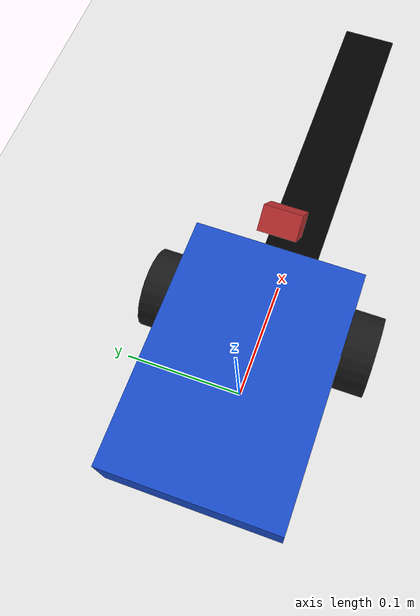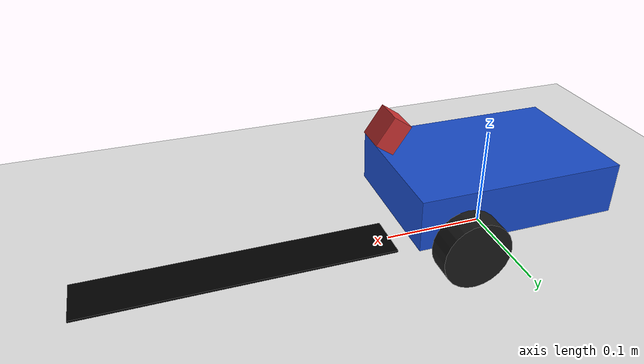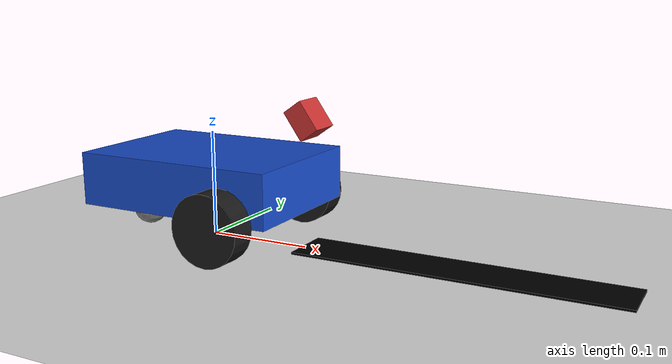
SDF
<?xml version="1.0"?>
<sdf version="1.8">
  <world name="empty_test">
    <physics name="1ms" type="ignored">
      <max_step_size>0.001</max_step_size>
      <real_time_factor>1.0</real_time_factor>
    </physics>
    <plugin filename="ignition-gazebo-physics-system"
            name="ignition::gazebo::systems::Physics"/>
    <plugin filename="ignition-gazebo-user-commands-system"
            name="ignition::gazebo::systems::UserCommands"/>
    <plugin filename="ignition-gazebo-scene-broadcaster-system"
            name="ignition::gazebo::systems::SceneBroadcaster"/>
    <plugin filename="ignition-gazebo-sensors-system"
            name="ignition::gazebo::systems::Sensors">
      <render_engine>ogre2</render_engine>
    </plugin>

    <light type="directional" name="sun">
      <cast_shadows>true</cast_shadows>
      <pose>0 0 10 0 0 0</pose>
      <diffuse>0.8 0.8 0.8 1</diffuse>
      <specular>0.2 0.2 0.2 1</specular>
      <direction>-0.5 0.1 -0.9</direction>
    </light>

    <model name="ground_plane">
      <static>true</static>
      <link name="link">
        <collision name="collision">
          <geometry>
            <plane><normal>0 0 1</normal><size>20 20</size></plane>
          </geometry>
        </collision>
        <visual name="visual">
          <geometry>
            <plane><normal>0 0 1</normal><size>20 20</size></plane>
          </geometry>
          <material>
            <ambient>0.9 0.9 0.9 1</ambient>
            <diffuse>0.9 0.9 0.9 1</diffuse>
          </material>
        </visual>
      </link>
    </model>

    <!-- Black strip on the floor in front of the robot so the camera
         done-check can prove it sees the ground ahead of the wheels. -->
    <model name="test_strip">
      <static>true</static>
      <pose>0.25 0 0.001 0 0 0</pose>
      <link name="link">
        <visual name="visual">
          <geometry>
            <box><size>0.3 0.05 0.002</size></box>
          </geometry>
          <material>
            <ambient>0 0 0 1</ambient>
            <diffuse>0 0 0 1</diffuse>
          </material>
        </visual>
      </link>
    </model>

    <include>
      <uri>model://linefollower_bot</uri>
      <pose>0 0 0 0 0 0</pose>
    </include>
  </world>
</sdf>

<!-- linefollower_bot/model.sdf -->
<sdf version="1.8">
  <model name="linefollower_bot">
    <!-- Chassis: 20 x 14 x 5 cm box. Bottom sits at z=0.033 (wheel radius). -->
    <link name="chassis">
      <pose>0 0 0.058 0 0 0</pose>
      <inertial>
        <mass>1.0</mass>
        <inertia>
          <ixx>0.00184</ixx>
          <iyy>0.00354</iyy>
          <izz>0.00497</izz>
        </inertia>
      </inertial>
      <visual name="chassis_visual">
        <geometry>
          <box><size>0.20 0.14 0.05</size></box>
        </geometry>
        <material>
          <ambient>0.1 0.3 0.8 1</ambient>
          <diffuse>0.1 0.3 0.8 1</diffuse>
        </material>
      </visual>
      <collision name="chassis_collision">
        <geometry>
          <box><size>0.20 0.14 0.05</size></box>
        </geometry>
      </collision>
    </link>

    <!-- Driven wheels: r=0.033, mounted toward the front -->
    <link name="left_wheel">
      <pose>0.055 0.0825 0.033 -1.5707 0 0</pose>
      <inertial>
        <mass>0.05</mass>
        <inertia>
          <ixx>0.0000162</ixx>
          <iyy>0.0000162</iyy>
          <izz>0.0000272</izz>
        </inertia>
      </inertial>
      <visual name="left_wheel_visual">
        <geometry>
          <cylinder><radius>0.033</radius><length>0.025</length></cylinder>
        </geometry>
        <material>
          <ambient>0.1 0.1 0.1 1</ambient>
          <diffuse>0.1 0.1 0.1 1</diffuse>
        </material>
      </visual>
      <collision name="left_wheel_collision">
        <geometry>
          <cylinder><radius>0.033</radius><length>0.025</length></cylinder>
        </geometry>
      </collision>
    </link>

    <link name="right_wheel">
      <pose>0.055 -0.0825 0.033 -1.5707 0 0</pose>
      <inertial>
        <mass>0.05</mass>
        <inertia>
          <ixx>0.0000162</ixx>
          <iyy>0.0000162</iyy>
          <izz>0.0000272</izz>
        </inertia>
      </inertial>
      <visual name="right_wheel_visual">
        <geometry>
          <cylinder><radius>0.033</radius><length>0.025</length></cylinder>
        </geometry>
        <material>
          <ambient>0.1 0.1 0.1 1</ambient>
          <diffuse>0.1 0.1 0.1 1</diffuse>
        </material>
      </visual>
      <collision name="right_wheel_collision">
        <geometry>
          <cylinder><radius>0.033</radius><length>0.025</length></cylinder>
        </geometry>
      </collision>
    </link>

    <!-- Rear caster: free-rolling sphere on a ball joint -->
    <link name="caster">
      <pose>-0.08 0 0.0165 0 0 0</pose>
      <inertial>
        <mass>0.02</mass>
        <inertia>
          <ixx>0.0000022</ixx>
          <iyy>0.0000022</iyy>
          <izz>0.0000022</izz>
        </inertia>
      </inertial>
      <visual name="caster_visual">
        <geometry>
          <sphere><radius>0.0165</radius></sphere>
        </geometry>
        <material>
          <ambient>0.5 0.5 0.5 1</ambient>
          <diffuse>0.5 0.5 0.5 1</diffuse>
        </material>
      </visual>
      <collision name="caster_collision">
        <geometry>
          <sphere><radius>0.0165</radius></sphere>
        </geometry>
      </collision>
    </link>

    <!-- x=0.105 puts the lens just past the chassis front edge (x=0.10)
         so the bottom of the frame sees ground, not the chassis top. -->
    <link name="camera_link">
      <pose>0.105 0 0.12 0 0.9599 0</pose>
      <inertial>
        <mass>0.02</mass>
        <inertia>
          <ixx>0.000002</ixx>
          <iyy>0.000002</iyy>
          <izz>0.000002</izz>
        </inertia>
      </inertial>
      <visual name="camera_visual">
        <geometry>
          <box><size>0.03 0.03 0.02</size></box>
        </geometry>
        <material>
          <ambient>0.8 0.2 0.2 1</ambient>
          <diffuse>0.8 0.2 0.2 1</diffuse>
        </material>
      </visual>
      <!-- 64x64 is the policy's input format — do not raise it. -->
      <sensor name="front_camera" type="camera">
        <topic>camera</topic>
        <update_rate>30</update_rate>
        <camera>
          <horizontal_fov>1.204</horizontal_fov>
          <image>
            <width>64</width>
            <height>64</height>
            <format>R8G8B8</format>
          </image>
          <clip>
            <near>0.01</near>
            <far>10</far>
          </clip>
        </camera>
      </sensor>
    </link>

    <joint name="left_wheel_joint" type="revolute">
      <parent>chassis</parent>
      <child>left_wheel</child>
      <axis>
        <xyz expressed_in="__model__">0 1 0</xyz>
        <limit>
          <lower>-1.79769e+308</lower>
          <upper>1.79769e+308</upper>
        </limit>
      </axis>
    </joint>

    <joint name="right_wheel_joint" type="revolute">
      <parent>chassis</parent>
      <child>right_wheel</child>
      <axis>
        <xyz expressed_in="__model__">0 1 0</xyz>
        <limit>
          <lower>-1.79769e+308</lower>
          <upper>1.79769e+308</upper>
        </limit>
      </axis>
    </joint>

    <joint name="caster_joint" type="ball">
      <parent>chassis</parent>
      <child>caster</child>
    </joint>

    <joint name="camera_joint" type="fixed">
      <parent>chassis</parent>
      <child>camera_link</child>
    </joint>

    <plugin filename="ignition-gazebo-diff-drive-system"
            name="ignition::gazebo::systems::DiffDrive">
      <left_joint>left_wheel_joint</left_joint>
      <right_joint>right_wheel_joint</right_joint>
      <wheel_separation>0.165</wheel_separation>
      <wheel_radius>0.033</wheel_radius>
      <odom_publish_frequency>20</odom_publish_frequency>
      <topic>/cmd_vel</topic>
    </plugin>
  </model>
</sdf>
